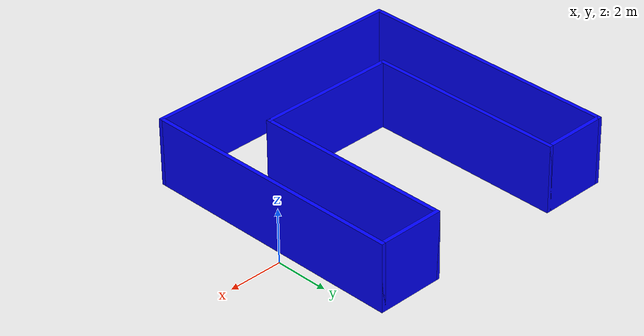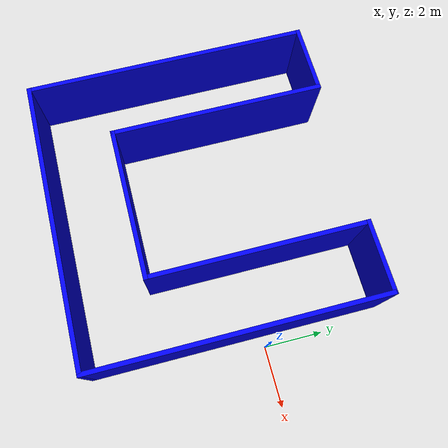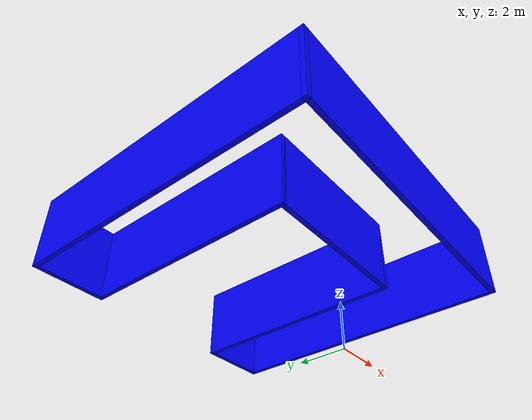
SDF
<?xml version='1.0'?>
<sdf version='1.7'>
  <model name='mybuilding'>
    <pose>-5.1875 -0.906 0 0 -0 0</pose>
    <link name='Wall_17'>
      <collision name='Wall_17_Collision'>
        <geometry>
          <box>
            <size>7.5 0.15 2.5</size>
          </box>
        </geometry>
        <pose>0 0 1.25 0 -0 0</pose>
      </collision>
      <visual name='Wall_17_Visual'>
        <pose>0 0 1.25 0 -0 0</pose>
        <geometry>
          <box>
            <size>7.5 0.15 2.5</size>
          </box>
        </geometry>
        <material>
          <script>
            <uri>file://media/materials/scripts/gazebo.material</uri>
            <name>Gazebo/Grey</name>
          </script>
          <ambient>0 0 1 1</ambient>
        </material>
        <meta>
          <layer>0</layer>
        </meta>
      </visual>
      <pose>-2.7625 1.25 0 0 -0 -1.5708</pose>
    </link>
    <link name='Wall_26'>
      <collision name='Wall_26_Collision'>
        <geometry>
          <box>
            <size>5.3 0.15 2.5</size>
          </box>
        </geometry>
        <pose>0 0 1.25 0 -0 0</pose>
      </collision>
      <visual name='Wall_26_Visual'>
        <pose>0 0 1.25 0 -0 0</pose>
        <geometry>
          <box>
            <size>5.3 0.15 2.5</size>
          </box>
        </geometry>
        <material>
          <script>
            <uri>file://media/materials/scripts/gazebo.material</uri>
            <name>Gazebo/Grey</name>
          </script>
          <ambient>0 0 1 1</ambient>
        </material>
        <meta>
          <layer>0</layer>
        </meta>
      </visual>
      <pose>-0.1875 -2.425 0 0 -0 0</pose>
    </link>
    <link name='Wall_29'>
      <collision name='Wall_29_Collision'>
        <geometry>
          <box>
            <size>7.5 0.15 2.5</size>
          </box>
        </geometry>
        <pose>0 0 1.25 0 -0 0</pose>
      </collision>
      <visual name='Wall_29_Visual'>
        <pose>0 0 1.25 0 -0 0</pose>
        <geometry>
          <box>
            <size>7.5 0.15 2.5</size>
          </box>
        </geometry>
        <material>
          <script>
            <uri>file://media/materials/scripts/gazebo.material</uri>
            <name>Gazebo/Grey</name>
          </script>
          <ambient>0 0 1 1</ambient>
        </material>
        <meta>
          <layer>0</layer>
        </meta>
      </visual>
      <pose>2.3875 1.25 0 0 -0 1.5708</pose>
    </link>
    <link name='Wall_30'>
      <collision name='Wall_30_Collision'>
        <geometry>
          <box>
            <size>2.5 0.15 2.5</size>
          </box>
        </geometry>
        <pose>0 0 1.25 0 -0 0</pose>
      </collision>
      <visual name='Wall_30_Visual'>
        <pose>0 0 1.25 0 -0 0</pose>
        <geometry>
          <box>
            <size>2.5 0.15 2.5</size>
          </box>
        </geometry>
        <material>
          <script>
            <uri>file://media/materials/scripts/gazebo.material</uri>
            <name>Gazebo/Grey</name>
          </script>
          <ambient>0 0 1 1</ambient>
        </material>
        <meta>
          <layer>0</layer>
        </meta>
      </visual>
      <pose>3.5625 4.925 0 0 -0 0</pose>
    </link>
    <link name='Wall_31'>
      <collision name='Wall_31_Collision'>
        <geometry>
          <box>
            <size>10 0.15 2.5</size>
          </box>
        </geometry>
        <pose>0 0 1.25 0 -0 0</pose>
      </collision>
      <visual name='Wall_31_Visual'>
        <pose>0 0 1.25 0 -0 0</pose>
        <geometry>
          <box>
            <size>10 0.15 2.5</size>
          </box>
        </geometry>
        <material>
          <script>
            <uri>file://media/materials/scripts/gazebo.material</uri>
            <name>Gazebo/Grey</name>
          </script>
          <ambient>0 0 1 1</ambient>
        </material>
        <meta>
          <layer>0</layer>
        </meta>
      </visual>
      <pose>4.7375 0 0 0 -0 -1.5708</pose>
    </link>
    <link name='Wall_32'>
      <collision name='Wall_32_Collision'>
        <geometry>
          <box>
            <size>10 0.15 2.5</size>
          </box>
        </geometry>
        <pose>0 0 1.25 0 -0 0</pose>
      </collision>
      <visual name='Wall_32_Visual'>
        <pose>0 0 1.25 0 -0 0</pose>
        <geometry>
          <box>
            <size>10 0.15 2.5</size>
          </box>
        </geometry>
        <material>
          <script>
            <uri>file://media/materials/scripts/gazebo.material</uri>
            <name>Gazebo/Grey</name>
          </script>
          <ambient>0 0 1 1</ambient>
        </material>
        <meta>
          <layer>0</layer>
        </meta>
      </visual>
      <pose>-0.1875 -4.925 0 0 -0 3.14159</pose>
    </link>
    <link name='Wall_34'>
      <collision name='Wall_34_Collision'>
        <geometry>
          <box>
            <size>10 0.15 2.5</size>
          </box>
        </geometry>
        <pose>0 0 1.25 0 -0 0</pose>
      </collision>
      <visual name='Wall_34_Visual'>
        <pose>0 0 1.25 0 -0 0</pose>
        <geometry>
          <box>
            <size>10 0.15 2.5</size>
          </box>
        </geometry>
        <material>
          <script>
            <uri>file://media/materials/scripts/gazebo.material</uri>
            <name>Gazebo/Grey</name>
          </script>
          <ambient>0 0 1 1</ambient>
        </material>
        <meta>
          <layer>0</layer>
        </meta>
      </visual>
      <pose>-5.1125 0 0 0 -0 1.5708</pose>
    </link>
    <link name='Wall_44'>
      <collision name='Wall_44_Collision'>
        <geometry>
          <box>
            <size>2.5 0.15 2.5</size>
          </box>
        </geometry>
        <pose>0 0 1.25 0 -0 0</pose>
      </collision>
      <visual name='Wall_44_Visual'>
        <pose>0 0 1.25 0 -0 0</pose>
        <geometry>
          <box>
            <size>2.5 0.15 2.5</size>
          </box>
        </geometry>
        <material>
          <script>
            <uri>file://media/materials/scripts/gazebo.material</uri>
            <name>Gazebo/Grey</name>
          </script>
          <ambient>0 0 1 1</ambient>
        </material>
        <meta>
          <layer>0</layer>
        </meta>
      </visual>
      <pose>-3.9375 4.925 0 0 -0 0</pose>
    </link>
    <static>1</static>
  </model>
</sdf>
